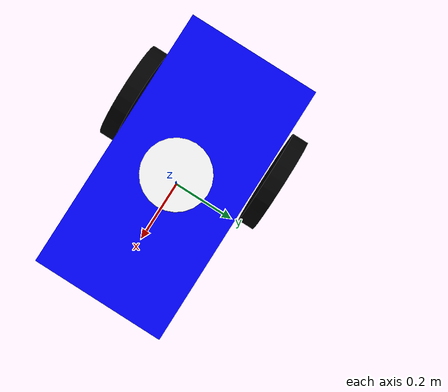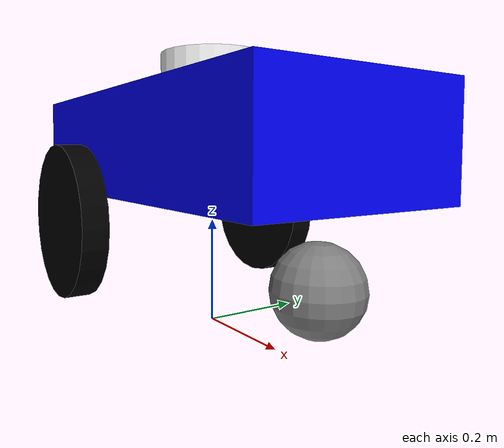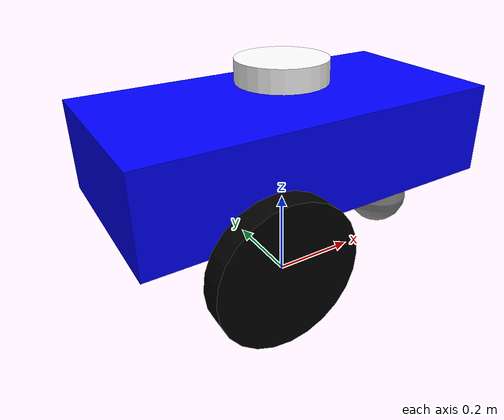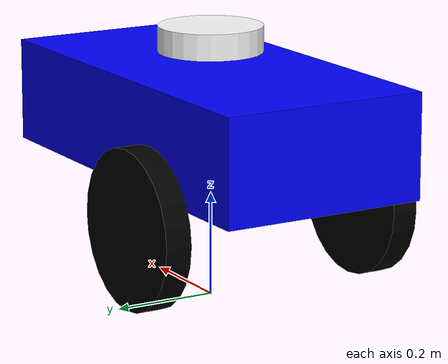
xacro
<?xml version="1.0"?>
<robot name="diff_drive" xmlns:xacro="http://www.ros.org/wiki/xacro">

  <!-- Xacro properties -->
  <xacro:property name="wheel_radius" value="0.15"/>  <!-- 30cm diameter -->
  <xacro:property name="wheel_thickness" value="0.05"/> <!-- 5cm thick -->
  <xacro:property name="caster_radius" value="0.075"/>   <!-- 15cm diameter -->

  <!-- Materials -->
  <material name="black">
    <color rgba="0 0 0 1"/>
  </material>
  <material name="gray">
    <color rgba="0.5 0.5 0.5 1"/>
  </material>
  <material name="blue">
    <color rgba="0 0 1 1"/>
  </material>
  <material name="white">
    <color rgba="1 1 1 1"/>
  </material>

  <!-- Base -->
  <link name="base_link">
    <visual>
      <origin xyz="0 0 0.3" rpy="0 0 0"/>
      <geometry>
        <box size="0.8 0.4 0.2"/>
      </geometry>
      <material name="blue"/>
    </visual>
    <collision>
      <origin xyz="0 0 0.3" rpy="0 0 0"/>
      <geometry>
        <box size="0.8 0.4 0.2"/>
      </geometry>
    </collision>
    <inertial>
      <mass value="5.0"/>
      <inertia ixx="0.083" ixy="0.0" ixz="0.0"
               iyy="0.183" iyz="0.0"
               izz="0.233"/>
    </inertial>
  </link>

  <link name="base_footprint"/>
  <joint name="base_footprint_joint" type='fixed'>
    <parent link='base_footprint'/>
    <child link='base_link'/>
    <origin xyz='0 0 0.05' rpy='0 0 0'/>
  </joint>

  <!-- Left wheel -->
  <link name="left_wheel_link">
    <visual>
      <geometry>
        <cylinder radius="${wheel_radius}" length="${wheel_thickness}"/>
      </geometry>
      <material name="black"/>
    </visual>
    <collision>
      <geometry>
        <cylinder radius="${wheel_radius}" length="${wheel_thickness}"/>
      </geometry>
    </collision>
    <inertial>
      <mass value="0.5"/>
      <inertia ixx="0.003" ixy="0.0" ixz="0.0"
               iyy="0.003" iyz="0.0"
               izz="0.002"/>
    </inertial>
  </link>

  <joint name="left_wheel_joint" type="continuous">
    <parent link="base_link"/>
    <child link="left_wheel_link"/>
    <origin xyz="-0.15 -0.24 0.15" rpy="1.5708 0 0"/>
    <axis xyz="0 0 1"/>
    <limit effort="10.0" velocity="20.0"/>
    <dynamics damping="0.1" friction="0.005"/>
  </joint>

  <!-- Right wheel -->
  <link name="right_wheel_link">
    <visual>
      <geometry>
        <cylinder radius="${wheel_radius}" length="${wheel_thickness}"/>
      </geometry>
      <material name="black"/>
    </visual>
    <collision>
      <geometry>
        <cylinder radius="${wheel_radius}" length="${wheel_thickness}"/>
      </geometry>
    </collision>
    <inertial>
      <mass value="0.5"/>
      <inertia ixx="0.003" ixy="0.0" ixz="0.0"
               iyy="0.003" iyz="0.0"
               izz="0.002"/>
    </inertial>
  </link>

  <joint name="right_wheel_joint" type="continuous">
    <parent link="base_link"/>
    <child link="right_wheel_link"/>
    <origin xyz="-0.15 0.24 0.15" rpy="1.5708 0 0"/>
    <axis xyz="0 0 1"/>
    <limit effort="10.0" velocity="20.0"/>
    <dynamics damping="0.1" friction="0.005"/>
  </joint>

  <!-- Caster wheel -->
  <link name="caster_wheel">
    <visual>
      <geometry>
        <sphere radius="${caster_radius}"/>
      </geometry>
      <material name="gray"/>
    </visual>
    <collision>
      <geometry>
        <sphere radius="${caster_radius}"/>
      </geometry>
    </collision>
    <inertial>
      <mass value="0.2"/>
      <inertia ixx="0.001" ixy="0.0" ixz="0.0"
               iyy="0.001" iyz="0.0"
               izz="0.001"/>
    </inertial>
  </link>

  <joint name="caster_wheel_joint" type="fixed">
    <parent link="base_link"/>
    <child link="caster_wheel"/>
    <origin xyz="0.3 0 0.075" rpy="0 0 0"/> <!-- touches ground -->
  </joint>

  <link name="depth_link"/>

<joint name="depth_link_joint" type="fixed">
  <origin xyz="0 0 0.1" rpy="0 0 0"/>
  <parent link="base_link"/>
  <child link="depth_link"/>
</joint>

<gazebo reference="depth_link">
  <xacro:include filename="$(find realsense2_description)/urdf/_d435.urdf.xacro"/>
  <xacro:sensor_d435 parent="depth_link"
                     use_nominal_extrinsics="true"
                     add_plug="false"
                     use_mesh="true">
    <origin xyz="0 0 0.1" rpy="0 0 0"/>
  </xacro:sensor_d435>

</gazebo>

  <!-- Lidar link -->
  <link name="lidar_link">
    <visual>
      <geometry>
        <cylinder radius="0.1" length="0.05"/>
      </geometry>
      <origin xyz="0 0 0" rpy="0 0 0"/>
      <material name="white"/>
    </visual>
    <collision>
      <geometry>
        <cylinder radius="0.1" length="0.05"/>
      </geometry>
    </collision>
    <inertial>
      <mass value="0.114"/>
      <inertia ixx="0.001" ixy="0.0" ixz="0.0"
               iyy="0.001" iyz="0.0"
               izz="0.001"/>
    </inertial>
  </link>

  <joint name="lidar_base_joint" type="fixed">
    <parent link="base_link"/>
    <child link="lidar_link"/>
    <origin xyz="0 0 0.45" rpy="0 0 0"/>
  </joint>

  <!-- Lidar Sensor -->
  <gazebo reference="lidar_link">
    <sensor name='laser' type='ray'>
      <pose>0 0 0 0 0 0</pose>
      <visualize>true</visualize>
      <update_rate>10</update_rate>
      <ray>
        <scan>
          <horizontal>
            <samples>720</samples>
            <resolution>1</resolution>
            <min_angle>-3.14</min_angle>
            <max_angle>3.14</max_angle>
          </horizontal>
        </scan>
        <range>
          <min>0.12</min>
          <max>10.0</max>
          <resolution>0.01</resolution>
        </range>
        <noise>
          <type>gaussian</type>
          <mean>0.0</mean>
          <stddev>0.01</stddev>
        </noise>
      </ray>
      <plugin name='laser_controller' filename='libgazebo_ros_ray_sensor.so'>
        <ros>
          <argument>~/out:=scan</argument>
        </ros>
        <output_type>sensor_msgs/LaserScan</output_type>
        <frame_name>lidar_link</frame_name>
      </plugin>
    </sensor>
  </gazebo>

  <!-- Differential Drive Plugin -->
  <gazebo>
    <plugin name="diff_drive" filename="libgazebo_ros_diff_drive.so">
      <ros>
        <namespace>/</namespace>
        <remapping>cmd_vel:=/cmd_vel</remapping>
        <remapping>odom:=/odom</remapping>
      </ros>

      <left_joint>left_wheel_joint</left_joint>
      <right_joint>right_wheel_joint</right_joint>
      <wheel_separation>0.48</wheel_separation>
      <wheel_diameter>0.30</wheel_diameter>

      <commandTopic>cmd_vel</commandTopic>
      <odometryTopic>odom</odometryTopic>
      <odometryFrame>odom</odometryFrame>
      <robotBaseFrame>base_footprint</robotBaseFrame>

      <publishOdom>true</publishOdom>
      <publishWheelTF>true</publishWheelTF>
      <publish_odom_tf>true</publish_odom_tf>
      <publishTF>true</publishTF>
      <updateRate>50.0</updateRate>
    </plugin>
  </gazebo>

  <!-- Gazebo Materials -->
  <gazebo reference="base_link"><material>Gazebo/Blue</material></gazebo>
  <gazebo reference="right_wheel_link"><material>Gazebo/Black</material></gazebo>
  <gazebo reference="left_wheel_link"><material>Gazebo/Black</material></gazebo>
  <gazebo reference="caster_wheel"><material>Gazebo/Grey</material></gazebo>
  <gazebo reference="lidar_link"><material>Gazebo/White</material></gazebo>

</robot>
